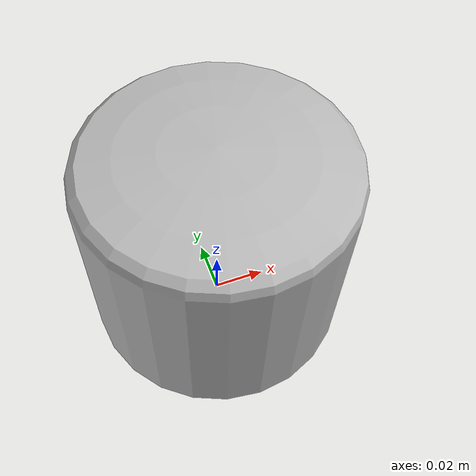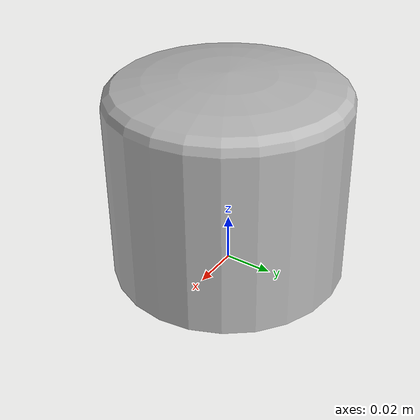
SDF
<?xml version="1.0" ?>
<sdf version="1.6">
  <model name="lidar_3d_v2">
    <link name="link">
      <pose>0 0 0 0 0 0</pose>
      <inertial>
        <pose>0 0 0.07121186 0 0 0</pose>
        <mass>0.83</mass>
        <inertia>
          <ixx>0.002853261803275034</ixx>
          <ixy>0</ixy>
          <ixz>0</ixz>
          <iyy>0.002853261803275034</iyy>
          <iyz>0</iyz>
          <izz>0.0029004988906384237</izz>
        </inertia>
      </inertial>
      <collision name="collision">
        <pose>0 0 0.07121186 0 0 0</pose>
        <geometry>
          <cylinder>
            <radius>0.05</radius>
            <length>0.08</length>
          </cylinder>
        </geometry>
      </collision>
      <visual name="visual">
        <geometry>
          <mesh>
            <uri>model://lidar_3d_v2/meshes/lidar_3d_v2.dae</uri>
            <scale>0.6 0.6 0.6</scale>
          </mesh>
        </geometry>
      </visual>
    </link>
  </model>
</sdf>
